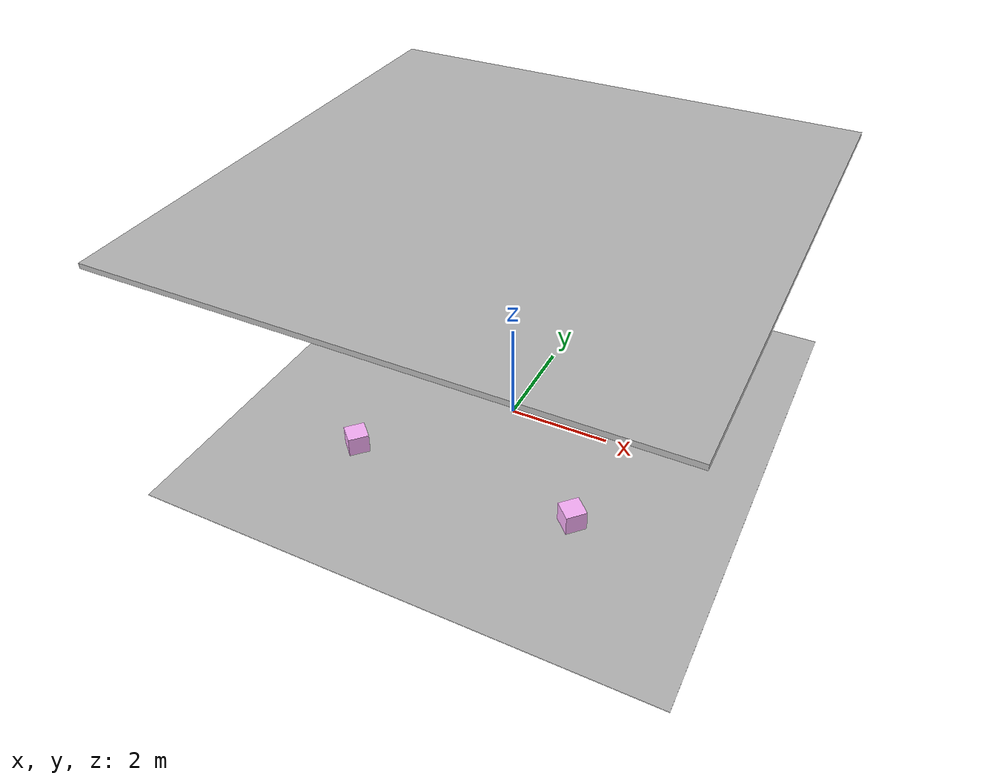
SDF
<sdf version="1.6">
 <world name="default">
  <light name="sun" type="directional">
   <pose>0 0 10 0 -0 0</pose>
   <diffuse>0.8 0.8 0.8 1</diffuse>
   <specular>0.1 0.1 0.1 1</specular>
   <attenuation>
    <range>1000</range>
    <constant>0.9</constant>
    <linear>0.01</linear>
    <quadratic>0.001</quadratic>
   </attenuation>
   <direction>-0.5 0.5 -1</direction>
  </light>
  <physics name="default_physics" default="0" type="ode">
   <max_step_size>0.01</max_step_size>
   <real_time_factor>1</real_time_factor>
   <real_time_update_rate>100</real_time_update_rate>
  </physics>
  <gravity>0 0 -9.8</gravity>
  <magnetic_field>6e-06 2.3e-05 -4.2e-05</magnetic_field>
  <atmosphere type="adiabatic"/>
  <scene><ambient>0.4 0.4 0.4 1</ambient><background>0.7 0.7 0.7 1</background><shadows>1</shadows></scene>
  <spherical_coordinates>
   <surface_model>EARTH_WGS84</surface_model>
   <latitude_deg>0</latitude_deg>
   <longitude_deg>0</longitude_deg>
   <elevation>0</elevation>
   <heading_deg>0</heading_deg>
  </spherical_coordinates>
  <model name="ceiling">
   <static>1</static>
   <link name="link">
    <gravity>0</gravity>
    <visual name="visual">
     <cast_shadows>0</cast_shadows>
     <geometry><box><size>10 10 0.1</size></box></geometry>
     <material>
      <script>
       <uri>model://ceiling/materials/scripts</uri>
       <uri>model://ceiling/materials/textures/</uri>
       <name>Ceiling/Image</name>
      </script>
     </material>
    </visual>
   </link>
   <pose>0 0 5 0 -0 0</pose>
  </model>
  <model name="floor">
   <static>1</static>
   <link name="floor::link">
    <collision name="collision">
     <geometry><plane><normal>0 0 1</normal><size>10 10</size></plane></geometry>
     <surface><friction><ode><mu>100</mu><mu2>50</mu2></ode></friction></surface>
    </collision>
    <visual name="visual">
     <cast_shadows>0</cast_shadows>
     <geometry><plane><normal>0 0 0</normal><size>10 10</size></plane></geometry>
     <material>
      <script>
       <uri>model://floor/materials/scripts</uri>
       <uri>model://floor/materials/textures/</uri>
       <name>Floor/Image</name>
      </script>
     </material>
    </visual>
   </link>
  </model>
  <model name="purplebox_push_0">
   <link name="link_1">
    <inertial>
     <mass>0.25</mass>
     <inertia>
      <ixx>0.166667</ixx>
      <ixy>0</ixy>
      <ixz>0</ixz>
      <iyy>0.166667</iyy>
      <iyz>0</iyz>
      <izz>0.166667</izz>
     </inertia>
    </inertial>
    <visual name="visual">
     <geometry><box><size>0.4 0.4 0.4</size></box></geometry>
     <material>
      <lighting>1</lighting>
      <script><uri>file://media/materials/scripts/gazebo.material</uri><name>Gazebo/Grey</name></script>
      <ambient>1 0.3 1 1</ambient>
      <diffuse>1 0.7 1 1</diffuse>
      <specular>0.01 0.01 0.01 1</specular>
      <emissive>0 0 0 1</emissive>
      <shader type="vertex"><normal_map>__default__</normal_map></shader>
     </material>
    </visual>
    <collision name="collision">
     <geometry><box><size>0.4 0.4 0.4</size></box></geometry>
     <surface>
      <friction>
       <ode><mu>1</mu><mu2>1</mu2><fdir1>0 0 0</fdir1><slip1>0</slip1><slip2>0</slip2></ode>
       <torsional>
        <coefficient>1</coefficient>
        <patch_radius>0</patch_radius>
        <surface_radius>0</surface_radius>
        <use_patch_radius>1</use_patch_radius>
        <ode><slip>0</slip></ode>
       </torsional>
      </friction>
      <bounce><restitution_coefficient>0</restitution_coefficient><threshold>1e+06</threshold></bounce>
      <contact>
       <collide_without_contact>0</collide_without_contact>
       <collide_without_contact_bitmask>1</collide_without_contact_bitmask>
       <collide_bitmask>1</collide_bitmask>
       <ode>
        <soft_cfm>0</soft_cfm>
        <soft_erp>0.2</soft_erp>
        <kp>1e+13</kp>
        <kd>1</kd>
        <max_vel>0.01</max_vel>
        <min_depth>0</min_depth>
       </ode>
       <bullet>
        <split_impulse>1</split_impulse>
        <split_impulse_penetration_threshold>-0.01</split_impulse_penetration_threshold>
        <soft_cfm>0</soft_cfm>
        <soft_erp>0.2</soft_erp>
        <kp>1e+13</kp>
        <kd>1</kd>
       </bullet>
      </contact>
     </surface>
    </collision>
   </link>
   <static>0</static>
   <pose>2.25 -2.25 0.2 0 -0 0.799901</pose>
  </model>
  <model name="purplebox_push_1">
   <link name="link_1">
    <inertial>
     <mass>0.25</mass>
     <inertia>
      <ixx>0.166667</ixx>
      <ixy>0</ixy>
      <ixz>0</ixz>
      <iyy>0.166667</iyy>
      <iyz>0</iyz>
      <izz>0.166667</izz>
     </inertia>
    </inertial>
    <visual name="visual">
     <geometry><box><size>0.4 0.4 0.4</size></box></geometry>
     <material>
      <lighting>1</lighting>
      <script><uri>file://media/materials/scripts/gazebo.material</uri><name>Gazebo/Grey</name></script>
      <ambient>1 0.3 1 1</ambient>
      <diffuse>1 0.7 1 1</diffuse>
      <specular>0.01 0.01 0.01 1</specular>
      <emissive>0 0 0 1</emissive>
      <shader type="vertex"><normal_map>__default__</normal_map></shader>
     </material>
    </visual>
    <collision name="collision">
     <geometry><box><size>0.4 0.4 0.4</size></box></geometry>
     <surface>
      <friction>
       <ode><mu>1</mu><mu2>1</mu2><fdir1>0 0 0</fdir1><slip1>0</slip1><slip2>0</slip2></ode>
       <torsional>
        <coefficient>1</coefficient>
        <patch_radius>0</patch_radius>
        <surface_radius>0</surface_radius>
        <use_patch_radius>1</use_patch_radius>
        <ode><slip>0</slip></ode>
       </torsional>
      </friction>
      <bounce><restitution_coefficient>0</restitution_coefficient><threshold>1e+06</threshold></bounce>
      <contact>
       <collide_without_contact>0</collide_without_contact>
       <collide_without_contact_bitmask>1</collide_without_contact_bitmask>
       <collide_bitmask>1</collide_bitmask>
       <ode>
        <soft_cfm>0</soft_cfm>
        <soft_erp>0.2</soft_erp>
        <kp>1e+13</kp>
        <kd>1</kd>
        <max_vel>0.01</max_vel>
        <min_depth>0</min_depth>
       </ode>
       <bullet>
        <split_impulse>1</split_impulse>
        <split_impulse_penetration_threshold>-0.01</split_impulse_penetration_threshold>
        <soft_cfm>0</soft_cfm>
        <soft_erp>0.2</soft_erp>
        <kp>1e+13</kp>
        <kd>1</kd>
       </bullet>
      </contact>
     </surface>
    </collision>
   </link>
   <static>0</static>
   <pose>2.25 2.25 0.2 0 -0 0.799986</pose>
  </model>
  <model name="purplebox_push_2">
   <link name="link_1">
    <inertial>
     <mass>0.25</mass>
     <inertia>
      <ixx>0.166667</ixx>
      <ixy>0</ixy>
      <ixz>0</ixz>
      <iyy>0.166667</iyy>
      <iyz>0</iyz>
      <izz>0.166667</izz>
     </inertia>
    </inertial>
    <visual name="visual">
     <geometry><box><size>0.4 0.4 0.4</size></box></geometry>
     <material>
      <lighting>1</lighting>
      <script><uri>file://media/materials/scripts/gazebo.material</uri><name>Gazebo/Grey</name></script>
      <ambient>1 0.3 1 1</ambient>
      <diffuse>1 0.7 1 1</diffuse>
      <specular>0.01 0.01 0.01 1</specular>
      <emissive>0 0 0 1</emissive>
      <shader type="vertex"><normal_map>__default__</normal_map></shader>
     </material>
    </visual>
    <collision name="collision">
     <geometry><box><size>0.4 0.4 0.4</size></box></geometry>
     <surface>
      <friction>
       <ode><mu>1</mu><mu2>1</mu2><fdir1>0 0 0</fdir1><slip1>0</slip1><slip2>0</slip2></ode>
       <torsional>
        <coefficient>1</coefficient>
        <patch_radius>0</patch_radius>
        <surface_radius>0</surface_radius>
        <use_patch_radius>1</use_patch_radius>
        <ode><slip>0</slip></ode>
       </torsional>
      </friction>
      <bounce><restitution_coefficient>0</restitution_coefficient><threshold>1e+06</threshold></bounce>
      <contact>
       <collide_without_contact>0</collide_without_contact>
       <collide_without_contact_bitmask>1</collide_without_contact_bitmask>
       <collide_bitmask>1</collide_bitmask>
       <ode>
        <soft_cfm>0</soft_cfm>
        <soft_erp>0.2</soft_erp>
        <kp>1e+13</kp>
        <kd>1</kd>
        <max_vel>0.01</max_vel>
        <min_depth>0</min_depth>
       </ode>
       <bullet>
        <split_impulse>1</split_impulse>
        <split_impulse_penetration_threshold>-0.01</split_impulse_penetration_threshold>
        <soft_cfm>0</soft_cfm>
        <soft_erp>0.2</soft_erp>
        <kp>1e+13</kp>
        <kd>1</kd>
       </bullet>
      </contact>
     </surface>
    </collision>
   </link>
   <static>0</static>
   <pose>-2.25 2.25 0.2 0 -0 0.799957</pose>
  </model>
  <model name="purplebox_push_3">
   <link name="link_1">
    <inertial>
     <mass>0.25</mass>
     <inertia>
      <ixx>0.166667</ixx>
      <ixy>0</ixy>
      <ixz>0</ixz>
      <iyy>0.166667</iyy>
      <iyz>0</iyz>
      <izz>0.166667</izz>
     </inertia>
    </inertial>
    <visual name="visual">
     <geometry><box><size>0.4 0.4 0.4</size></box></geometry>
     <material>
      <lighting>1</lighting>
      <script><uri>file://media/materials/scripts/gazebo.material</uri><name>Gazebo/Grey</name></script>
      <ambient>1 0.3 1 1</ambient>
      <diffuse>1 0.7 1 1</diffuse>
      <specular>0.01 0.01 0.01 1</specular>
      <emissive>0 0 0 1</emissive>
      <shader type="vertex"><normal_map>__default__</normal_map></shader>
     </material>
    </visual>
    <collision name="collision">
     <geometry><box><size>0.4 0.4 0.4</size></box></geometry>
     <surface>
      <friction>
       <ode><mu>1</mu><mu2>1</mu2><fdir1>0 0 0</fdir1><slip1>0</slip1><slip2>0</slip2></ode>
       <torsional>
        <coefficient>1</coefficient>
        <patch_radius>0</patch_radius>
        <surface_radius>0</surface_radius>
        <use_patch_radius>1</use_patch_radius>
        <ode><slip>0</slip></ode>
       </torsional>
      </friction>
      <bounce><restitution_coefficient>0</restitution_coefficient><threshold>1e+06</threshold></bounce>
      <contact>
       <collide_without_contact>0</collide_without_contact>
       <collide_without_contact_bitmask>1</collide_without_contact_bitmask>
       <collide_bitmask>1</collide_bitmask>
       <ode>
        <soft_cfm>0</soft_cfm>
        <soft_erp>0.2</soft_erp>
        <kp>1e+13</kp>
        <kd>1</kd>
        <max_vel>0.01</max_vel>
        <min_depth>0</min_depth>
       </ode>
       <bullet>
        <split_impulse>1</split_impulse>
        <split_impulse_penetration_threshold>-0.01</split_impulse_penetration_threshold>
        <soft_cfm>0</soft_cfm>
        <soft_erp>0.2</soft_erp>
        <kp>1e+13</kp>
        <kd>1</kd>
       </bullet>
      </contact>
     </surface>
    </collision>
   </link>
   <static>0</static>
   <pose>-2.25 -2.25 0.2 0 -0 0.799931</pose>
  </model>
 </world>
</sdf>
